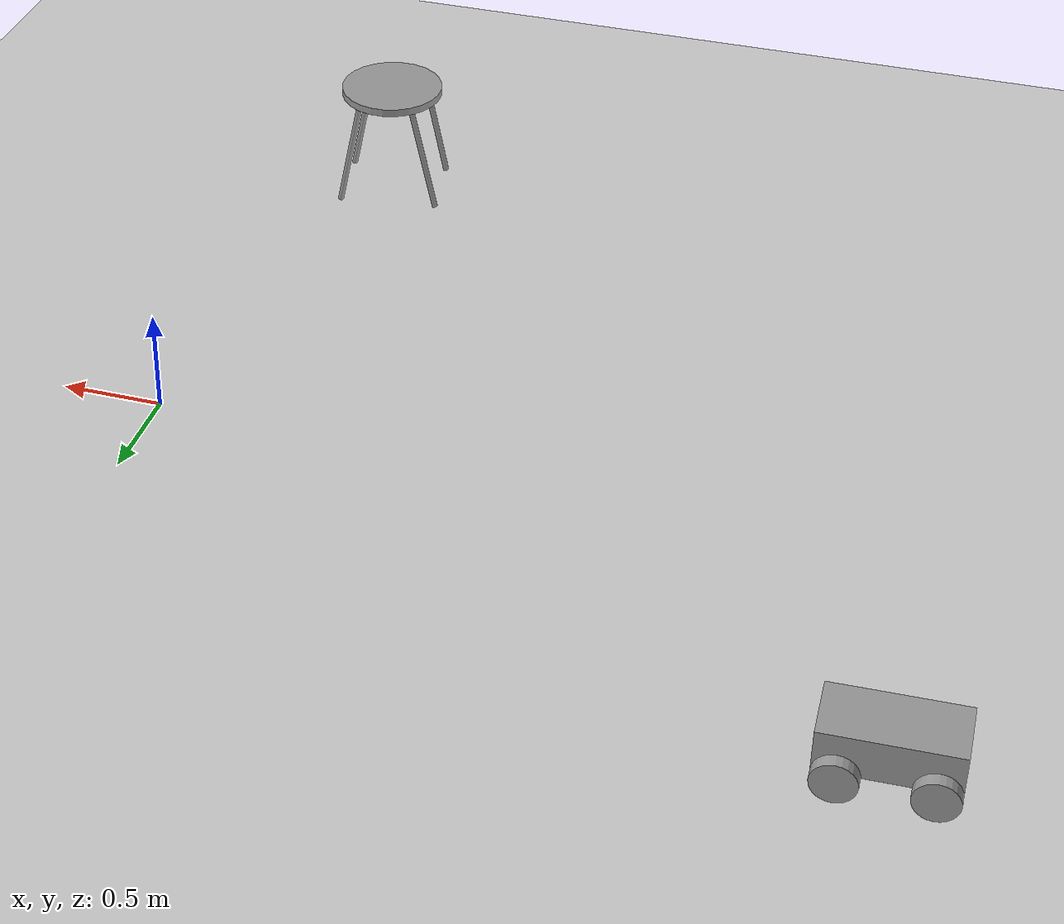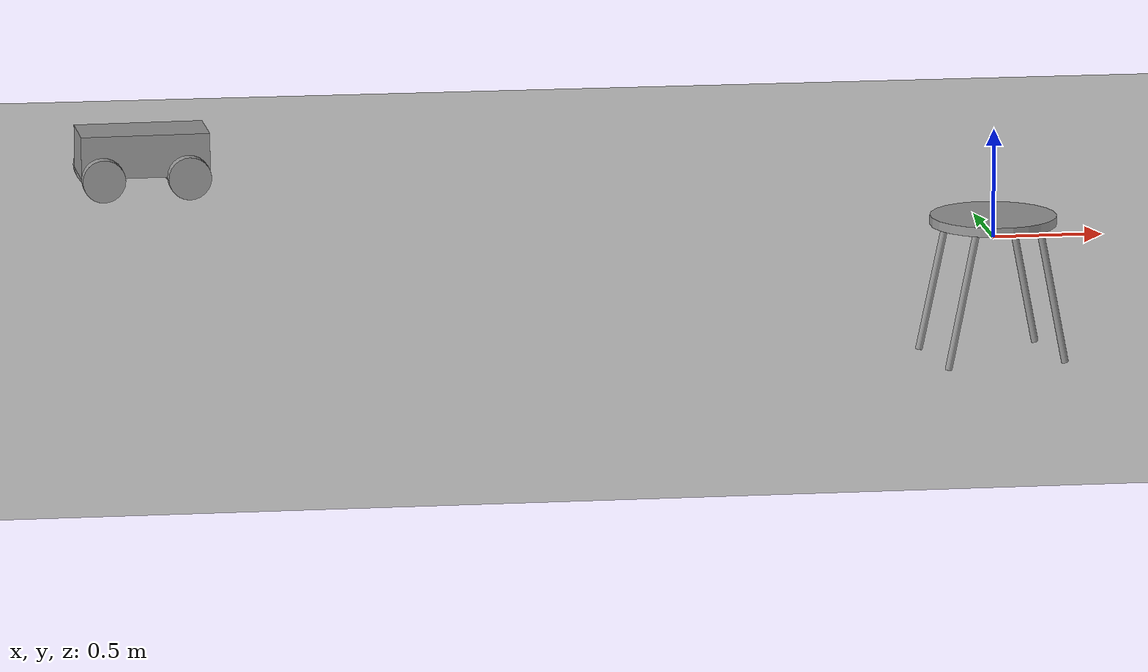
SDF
<sdf version="1.6">
 <world name="default">
  <model name="ground_plane">
   <static>1</static>
   <link name="link">
    <collision name="collision">
     <geometry><plane><normal>0 0 1</normal><size>100 100</size></plane></geometry>
     <surface><friction><ode><mu>100</mu><mu2>50</mu2></ode></friction></surface>
    </collision>
    <visual name="visual">
     <cast_shadows>0</cast_shadows>
     <geometry><plane><normal>0 0 1</normal><size>100 100</size></plane></geometry>
     <material>
      <script><uri>file://media/materials/scripts/gazebo.material</uri><name>Gazebo/Grey</name></script>
     </material>
    </visual>
   </link>
  </model>
  <model name="4wheelrobot">
   <link name="link_0">
    <pose>0 1e-06 0.2 0 -0 0</pose>
    <inertial>
     <mass>1</mass>
     <inertia>
      <ixx>0.166667</ixx>
      <ixy>0</ixy>
      <ixz>0</ixz>
      <iyy>0.166667</iyy>
      <iyz>0</iyz>
      <izz>0.166667</izz>
     </inertia>
    </inertial>
    <visual name="visual">
     <geometry><box><size>0.6 0.3 0.2</size></box></geometry>
     <material>
      <lighting>1</lighting>
      <script><uri>file://media/materials/scripts/gazebo.material</uri><name>Gazebo/Grey</name></script>
      <shader type="pixel"><normal_map>__default__</normal_map></shader>
      <ambient>0.3 0.3 0.3 1</ambient>
      <diffuse>0.7 0.7 0.7 1</diffuse>
      <specular>0.01 0.01 0.01 1</specular>
      <emissive>0 0 0 1</emissive>
     </material>
    </visual>
    <collision name="collision">
     <geometry><box><size>0.6 0.3 0.2</size></box></geometry>
     <surface>
      <friction>
       <ode><mu>1</mu><mu2>1</mu2><fdir1>0 0 0</fdir1><slip1>0</slip1><slip2>0</slip2></ode>
       <torsional>
        <coefficient>1</coefficient>
        <patch_radius>0</patch_radius>
        <surface_radius>0</surface_radius>
        <use_patch_radius>1</use_patch_radius>
        <ode><slip>0</slip></ode>
       </torsional>
      </friction>
      <bounce><restitution_coefficient>0</restitution_coefficient><threshold>1e+06</threshold></bounce>
      <contact>
       <collide_without_contact>0</collide_without_contact>
       <collide_without_contact_bitmask>1</collide_without_contact_bitmask>
       <collide_bitmask>1</collide_bitmask>
       <ode>
        <soft_cfm>0</soft_cfm>
        <soft_erp>0.2</soft_erp>
        <kp>1e+13</kp>
        <kd>1</kd>
        <max_vel>0.01</max_vel>
        <min_depth>0</min_depth>
       </ode>
       <bullet>
        <split_impulse>1</split_impulse>
        <split_impulse_penetration_threshold>-0.01</split_impulse_penetration_threshold>
        <soft_cfm>0</soft_cfm>
        <soft_erp>0.2</soft_erp>
        <kp>1e+13</kp>
        <kd>1</kd>
       </bullet>
      </contact>
     </surface>
    </collision>
   </link>
   <link name="link_1">
    <pose>0.2 -0.180012 0.1 1.5707 -0 0</pose>
    <inertial>
     <mass>1</mass>
     <inertia><ixx>0.145833</ixx><ixy>0</ixy><ixz>0</ixz><iyy>0.145833</iyy><iyz>0</iyz><izz>0.125</izz></inertia>
    </inertial>
    <visual name="visual">
     <geometry><cylinder><radius>0.1</radius><length>0.06</length></cylinder></geometry>
     <material>
      <lighting>1</lighting>
      <script><uri>file://media/materials/scripts/gazebo.material</uri><name>Gazebo/Grey</name></script>
      <shader type="pixel"><normal_map>__default__</normal_map></shader>
      <ambient>0.3 0.3 0.3 1</ambient>
      <diffuse>0.7 0.7 0.7 1</diffuse>
      <specular>0.01 0.01 0.01 1</specular>
      <emissive>0 0 0 1</emissive>
     </material>
    </visual>
    <collision name="collision">
     <geometry><cylinder><radius>0.1</radius><length>0.06</length></cylinder></geometry>
     <surface>
      <friction>
       <ode><mu>1</mu><mu2>1</mu2><fdir1>0 0 0</fdir1><slip1>0</slip1><slip2>0</slip2></ode>
       <torsional>
        <coefficient>1</coefficient>
        <patch_radius>0</patch_radius>
        <surface_radius>0</surface_radius>
        <use_patch_radius>1</use_patch_radius>
        <ode><slip>0</slip></ode>
       </torsional>
      </friction>
      <bounce><restitution_coefficient>0</restitution_coefficient><threshold>1e+06</threshold></bounce>
      <contact>
       <collide_without_contact>0</collide_without_contact>
       <collide_without_contact_bitmask>1</collide_without_contact_bitmask>
       <collide_bitmask>1</collide_bitmask>
       <ode>
        <soft_cfm>0</soft_cfm>
        <soft_erp>0.2</soft_erp>
        <kp>1e+13</kp>
        <kd>1</kd>
        <max_vel>0.01</max_vel>
        <min_depth>0</min_depth>
       </ode>
       <bullet>
        <split_impulse>1</split_impulse>
        <split_impulse_penetration_threshold>-0.01</split_impulse_penetration_threshold>
        <soft_cfm>0</soft_cfm>
        <soft_erp>0.2</soft_erp>
        <kp>1e+13</kp>
        <kd>1</kd>
       </bullet>
      </contact>
     </surface>
    </collision>
   </link>
   <link name="link_1_clone">
    <pose>-0.2 -0.180009 0.1 1.5707 -0 0</pose>
    <inertial>
     <mass>1</mass>
     <inertia><ixx>0.145833</ixx><ixy>0</ixy><ixz>0</ixz><iyy>0.145833</iyy><iyz>0</iyz><izz>0.125</izz></inertia>
    </inertial>
    <visual name="visual">
     <geometry><cylinder><radius>0.1</radius><length>0.06</length></cylinder></geometry>
     <material>
      <lighting>1</lighting>
      <script><uri>file://media/materials/scripts/gazebo.material</uri><name>Gazebo/Grey</name></script>
      <shader type="pixel"><normal_map>__default__</normal_map></shader>
      <ambient>0.3 0.3 0.3 1</ambient>
      <diffuse>0.7 0.7 0.7 1</diffuse>
      <specular>0.01 0.01 0.01 1</specular>
      <emissive>0 0 0 1</emissive>
     </material>
    </visual>
    <collision name="collision">
     <geometry><cylinder><radius>0.1</radius><length>0.06</length></cylinder></geometry>
     <surface>
      <friction>
       <ode><mu>1</mu><mu2>1</mu2><fdir1>0 0 0</fdir1><slip1>0</slip1><slip2>0</slip2></ode>
       <torsional>
        <coefficient>1</coefficient>
        <patch_radius>0</patch_radius>
        <surface_radius>0</surface_radius>
        <use_patch_radius>1</use_patch_radius>
        <ode><slip>0</slip></ode>
       </torsional>
      </friction>
      <bounce><restitution_coefficient>0</restitution_coefficient><threshold>1e+06</threshold></bounce>
      <contact>
       <collide_without_contact>0</collide_without_contact>
       <collide_without_contact_bitmask>1</collide_without_contact_bitmask>
       <collide_bitmask>1</collide_bitmask>
       <ode>
        <soft_cfm>0</soft_cfm>
        <soft_erp>0.2</soft_erp>
        <kp>1e+13</kp>
        <kd>1</kd>
        <max_vel>0.01</max_vel>
        <min_depth>0</min_depth>
       </ode>
       <bullet>
        <split_impulse>1</split_impulse>
        <split_impulse_penetration_threshold>-0.01</split_impulse_penetration_threshold>
        <soft_cfm>0</soft_cfm>
        <soft_erp>0.2</soft_erp>
        <kp>1e+13</kp>
        <kd>1</kd>
       </bullet>
      </contact>
     </surface>
    </collision>
   </link>
   <link name="link_1_clone_0">
    <pose>-0.2 0.18001 0.1 1.5707 -0 0</pose>
    <inertial>
     <mass>1</mass>
     <inertia><ixx>0.145833</ixx><ixy>0</ixy><ixz>0</ixz><iyy>0.145833</iyy><iyz>0</iyz><izz>0.125</izz></inertia>
    </inertial>
    <visual name="visual">
     <geometry><cylinder><radius>0.1</radius><length>0.06</length></cylinder></geometry>
     <material>
      <lighting>1</lighting>
      <script><uri>file://media/materials/scripts/gazebo.material</uri><name>Gazebo/Grey</name></script>
      <shader type="pixel"><normal_map>__default__</normal_map></shader>
      <ambient>0.3 0.3 0.3 1</ambient>
      <diffuse>0.7 0.7 0.7 1</diffuse>
      <specular>0.01 0.01 0.01 1</specular>
      <emissive>0 0 0 1</emissive>
     </material>
    </visual>
    <collision name="collision">
     <geometry><cylinder><radius>0.1</radius><length>0.06</length></cylinder></geometry>
     <surface>
      <friction>
       <ode><mu>1</mu><mu2>1</mu2><fdir1>0 0 0</fdir1><slip1>0</slip1><slip2>0</slip2></ode>
       <torsional>
        <coefficient>1</coefficient>
        <patch_radius>0</patch_radius>
        <surface_radius>0</surface_radius>
        <use_patch_radius>1</use_patch_radius>
        <ode><slip>0</slip></ode>
       </torsional>
      </friction>
      <bounce><restitution_coefficient>0</restitution_coefficient><threshold>1e+06</threshold></bounce>
      <contact>
       <collide_without_contact>0</collide_without_contact>
       <collide_without_contact_bitmask>1</collide_without_contact_bitmask>
       <collide_bitmask>1</collide_bitmask>
       <ode>
        <soft_cfm>0</soft_cfm>
        <soft_erp>0.2</soft_erp>
        <kp>1e+13</kp>
        <kd>1</kd>
        <max_vel>0.01</max_vel>
        <min_depth>0</min_depth>
       </ode>
       <bullet>
        <split_impulse>1</split_impulse>
        <split_impulse_penetration_threshold>-0.01</split_impulse_penetration_threshold>
        <soft_cfm>0</soft_cfm>
        <soft_erp>0.2</soft_erp>
        <kp>1e+13</kp>
        <kd>1</kd>
       </bullet>
      </contact>
     </surface>
    </collision>
   </link>
   <link name="link_1_clone_1">
    <pose>0.2 0.18001 0.1 1.5707 -0 0</pose>
    <inertial>
     <mass>1</mass>
     <inertia><ixx>0.145833</ixx><ixy>0</ixy><ixz>0</ixz><iyy>0.145833</iyy><iyz>0</iyz><izz>0.125</izz></inertia>
    </inertial>
    <visual name="visual">
     <geometry><cylinder><radius>0.1</radius><length>0.06</length></cylinder></geometry>
     <material>
      <lighting>1</lighting>
      <script><uri>file://media/materials/scripts/gazebo.material</uri><name>Gazebo/Grey</name></script>
      <shader type="pixel"><normal_map>__default__</normal_map></shader>
      <ambient>0.3 0.3 0.3 1</ambient>
      <diffuse>0.7 0.7 0.7 1</diffuse>
      <specular>0.01 0.01 0.01 1</specular>
      <emissive>0 0 0 1</emissive>
     </material>
    </visual>
    <collision name="collision">
     <geometry><cylinder><radius>0.1</radius><length>0.06</length></cylinder></geometry>
     <surface>
      <friction>
       <ode><mu>1</mu><mu2>1</mu2><fdir1>0 0 0</fdir1><slip1>0</slip1><slip2>0</slip2></ode>
       <torsional>
        <coefficient>1</coefficient>
        <patch_radius>0</patch_radius>
        <surface_radius>0</surface_radius>
        <use_patch_radius>1</use_patch_radius>
        <ode><slip>0</slip></ode>
       </torsional>
      </friction>
      <bounce><restitution_coefficient>0</restitution_coefficient><threshold>1e+06</threshold></bounce>
      <contact>
       <collide_without_contact>0</collide_without_contact>
       <collide_without_contact_bitmask>1</collide_without_contact_bitmask>
       <collide_bitmask>1</collide_bitmask>
       <ode>
        <soft_cfm>0</soft_cfm>
        <soft_erp>0.2</soft_erp>
        <kp>1e+13</kp>
        <kd>1</kd>
        <max_vel>0.01</max_vel>
        <min_depth>0</min_depth>
       </ode>
       <bullet>
        <split_impulse>1</split_impulse>
        <split_impulse_penetration_threshold>-0.01</split_impulse_penetration_threshold>
        <soft_cfm>0</soft_cfm>
        <soft_erp>0.2</soft_erp>
        <kp>1e+13</kp>
        <kd>1</kd>
       </bullet>
      </contact>
     </surface>
    </collision>
   </link>
   <joint name="link_0_JOINT_0" type="revolute">
    <parent>link_0</parent>
    <child>link_1</child>
    <axis>
     <xyz>0 1 0</xyz>
     <use_parent_model_frame>0</use_parent_model_frame>
     <limit>
      <lower>-1.79769e+308</lower>
      <upper>1.79769e+308</upper>
      <effort>-1</effort>
      <velocity>-1</velocity>
     </limit>
     <dynamics>
      <spring_reference>0</spring_reference>
      <spring_stiffness>0</spring_stiffness>
      <damping>0</damping>
      <friction>0</friction>
     </dynamics>
    </axis>
    <physics>
     <ode><limit><cfm>0</cfm><erp>0.2</erp></limit><suspension><cfm>0</cfm><erp>0.2</erp></suspension></ode>
    </physics>
   </joint>
   <joint name="link_0_JOINT_1" type="revolute">
    <parent>link_0</parent>
    <child>link_1_clone_1</child>
    <axis>
     <xyz>0 1 0</xyz>
     <use_parent_model_frame>0</use_parent_model_frame>
     <limit>
      <lower>-1.79769e+308</lower>
      <upper>1.79769e+308</upper>
      <effort>-1</effort>
      <velocity>-1</velocity>
     </limit>
     <dynamics>
      <spring_reference>0</spring_reference>
      <spring_stiffness>0</spring_stiffness>
      <damping>0</damping>
     </dynamics>
    </axis>
    <physics>
     <ode><limit><cfm>0</cfm><erp>0.2</erp></limit><suspension><cfm>0</cfm><erp>0.2</erp></suspension></ode>
    </physics>
   </joint>
   <joint name="link_0_JOINT_2" type="revolute">
    <parent>link_0</parent>
    <child>link_1_clone</child>
    <axis>
     <xyz>0 1 0</xyz>
     <use_parent_model_frame>0</use_parent_model_frame>
     <limit>
      <lower>-1.79769e+308</lower>
      <upper>1.79769e+308</upper>
      <effort>-1</effort>
      <velocity>-1</velocity>
     </limit>
     <dynamics>
      <spring_reference>0</spring_reference>
      <spring_stiffness>0</spring_stiffness>
      <damping>0</damping>
     </dynamics>
    </axis>
    <physics>
     <ode><limit><cfm>0</cfm><erp>0.2</erp></limit><suspension><cfm>0</cfm><erp>0.2</erp></suspension></ode>
    </physics>
   </joint>
   <joint name="link_0_JOINT_3" type="revolute">
    <parent>link_0</parent>
    <child>link_1_clone_0</child>
    <axis>
     <xyz>0 1 0</xyz>
     <use_parent_model_frame>0</use_parent_model_frame>
     <limit>
      <lower>-1.79769e+308</lower>
      <upper>1.79769e+308</upper>
      <effort>-1</effort>
      <velocity>-1</velocity>
     </limit>
     <dynamics>
      <spring_reference>0</spring_reference>
      <spring_stiffness>0</spring_stiffness>
      <damping>0</damping>
     </dynamics>
    </axis>
    <physics>
     <ode><limit><cfm>0</cfm><erp>0.2</erp></limit><suspension><cfm>0</cfm><erp>0.2</erp></suspension></ode>
    </physics>
   </joint>
   <static>0</static>
   <pose>-3.75164 1.46547 1e-06 -4e-06 7e-06 0.038939</pose>
  </model>
  <model name="chair01_1">
   <link name="link_1">
    <pose>0 0 0.6 0 -0 0</pose>
    <inertial>
     <mass>1</mass>
     <inertia><ixx>0.145833</ixx><ixy>0</ixy><ixz>0</ixz><iyy>0.145833</iyy><iyz>0</iyz><izz>0.125</izz></inertia>
    </inertial>
    <visual name="visual">
     <geometry><cylinder><radius>0.27</radius><length>0.04</length></cylinder></geometry>
     <material>
      <lighting>1</lighting>
      <script><uri>file://media/materials/scripts/gazebo.material</uri><name>Gazebo/Grey</name></script>
      <shader type="pixel"><normal_map>__default__</normal_map></shader>
      <ambient>0.3 0.3 0.3 1</ambient>
      <diffuse>0.7 0.7 0.7 1</diffuse>
      <specular>0.01 0.01 0.01 1</specular>
      <emissive>0 0 0 1</emissive>
     </material>
    </visual>
    <collision name="collision">
     <geometry><cylinder><radius>0.27</radius><length>0.04</length></cylinder></geometry>
     <surface>
      <friction>
       <ode><mu>1</mu><mu2>1</mu2><fdir1>0 0 0</fdir1><slip1>0</slip1><slip2>0</slip2></ode>
       <torsional>
        <coefficient>1</coefficient>
        <patch_radius>0</patch_radius>
        <surface_radius>0</surface_radius>
        <use_patch_radius>1</use_patch_radius>
        <ode><slip>0</slip></ode>
       </torsional>
      </friction>
      <bounce><restitution_coefficient>0</restitution_coefficient><threshold>1e+06</threshold></bounce>
      <contact>
       <collide_without_contact>0</collide_without_contact>
       <collide_without_contact_bitmask>1</collide_without_contact_bitmask>
       <collide_bitmask>1</collide_bitmask>
       <ode>
        <soft_cfm>0</soft_cfm>
        <soft_erp>0.2</soft_erp>
        <kp>1e+13</kp>
        <kd>1</kd>
        <max_vel>0.01</max_vel>
        <min_depth>0</min_depth>
       </ode>
       <bullet>
        <split_impulse>1</split_impulse>
        <split_impulse_penetration_threshold>-0.01</split_impulse_penetration_threshold>
        <soft_cfm>0</soft_cfm>
        <soft_erp>0.2</soft_erp>
        <kp>1e+13</kp>
        <kd>1</kd>
       </bullet>
      </contact>
     </surface>
    </collision>
   </link>
   <link name="link_2">
    <pose>0.2 0.2 0.3 0 -0.2 0</pose>
    <inertial>
     <mass>1</mass>
     <inertia><ixx>0.145833</ixx><ixy>0</ixy><ixz>0</ixz><iyy>0.145833</iyy><iyz>0</iyz><izz>0.125</izz></inertia>
    </inertial>
    <visual name="visual">
     <geometry><cylinder><radius>0.015</radius><length>0.6</length></cylinder></geometry>
     <material>
      <lighting>1</lighting>
      <script><uri>file://media/materials/scripts/gazebo.material</uri><name>Gazebo/Grey</name></script>
      <shader type="pixel"><normal_map>__default__</normal_map></shader>
      <ambient>0.3 0.3 0.3 1</ambient>
      <diffuse>0.7 0.7 0.7 1</diffuse>
      <specular>0.01 0.01 0.01 1</specular>
      <emissive>0 0 0 1</emissive>
     </material>
    </visual>
    <collision name="collision">
     <geometry><cylinder><radius>0.015</radius><length>0.6</length></cylinder></geometry>
     <surface>
      <friction>
       <ode><mu>1</mu><mu2>1</mu2><fdir1>0 0 0</fdir1><slip1>0</slip1><slip2>0</slip2></ode>
       <torsional>
        <coefficient>1</coefficient>
        <patch_radius>0</patch_radius>
        <surface_radius>0</surface_radius>
        <use_patch_radius>1</use_patch_radius>
        <ode><slip>0</slip></ode>
       </torsional>
      </friction>
      <bounce><restitution_coefficient>0</restitution_coefficient><threshold>1e+06</threshold></bounce>
      <contact>
       <collide_without_contact>0</collide_without_contact>
       <collide_without_contact_bitmask>1</collide_without_contact_bitmask>
       <collide_bitmask>1</collide_bitmask>
       <ode>
        <soft_cfm>0</soft_cfm>
        <soft_erp>0.2</soft_erp>
        <kp>1e+13</kp>
        <kd>1</kd>
        <max_vel>0.01</max_vel>
        <min_depth>0</min_depth>
       </ode>
       <bullet>
        <split_impulse>1</split_impulse>
        <split_impulse_penetration_threshold>-0.01</split_impulse_penetration_threshold>
        <soft_cfm>0</soft_cfm>
        <soft_erp>0.2</soft_erp>
        <kp>1e+13</kp>
        <kd>1</kd>
       </bullet>
      </contact>
     </surface>
    </collision>
   </link>
   <link name="link_2_clone">
    <pose>0.2 -0.2 0.3 0 -0.2 0</pose>
    <inertial>
     <mass>1</mass>
     <inertia><ixx>0.145833</ixx><ixy>0</ixy><ixz>0</ixz><iyy>0.145833</iyy><iyz>0</iyz><izz>0.125</izz></inertia>
    </inertial>
    <visual name="visual">
     <geometry><cylinder><radius>0.015</radius><length>0.6</length></cylinder></geometry>
     <material>
      <lighting>1</lighting>
      <script><uri>file://media/materials/scripts/gazebo.material</uri><name>Gazebo/Grey</name></script>
      <shader type="pixel"><normal_map>__default__</normal_map></shader>
      <ambient>0.3 0.3 0.3 1</ambient>
      <diffuse>0.7 0.7 0.7 1</diffuse>
      <specular>0.01 0.01 0.01 1</specular>
      <emissive>0 0 0 1</emissive>
     </material>
    </visual>
    <collision name="collision">
     <geometry><cylinder><radius>0.015</radius><length>0.6</length></cylinder></geometry>
     <surface>
      <friction>
       <ode><mu>1</mu><mu2>1</mu2><fdir1>0 0 0</fdir1><slip1>0</slip1><slip2>0</slip2></ode>
       <torsional>
        <coefficient>1</coefficient>
        <patch_radius>0</patch_radius>
        <surface_radius>0</surface_radius>
        <use_patch_radius>1</use_patch_radius>
        <ode><slip>0</slip></ode>
       </torsional>
      </friction>
      <bounce><restitution_coefficient>0</restitution_coefficient><threshold>1e+06</threshold></bounce>
      <contact>
       <collide_without_contact>0</collide_without_contact>
       <collide_without_contact_bitmask>1</collide_without_contact_bitmask>
       <collide_bitmask>1</collide_bitmask>
       <ode>
        <soft_cfm>0</soft_cfm>
        <soft_erp>0.2</soft_erp>
        <kp>1e+13</kp>
        <kd>1</kd>
        <max_vel>0.01</max_vel>
        <min_depth>0</min_depth>
       </ode>
       <bullet>
        <split_impulse>1</split_impulse>
        <split_impulse_penetration_threshold>-0.01</split_impulse_penetration_threshold>
        <soft_cfm>0</soft_cfm>
        <soft_erp>0.2</soft_erp>
        <kp>1e+13</kp>
        <kd>1</kd>
       </bullet>
      </contact>
     </surface>
    </collision>
   </link>
   <link name="link_2_clone_0">
    <pose>-0.2 -0.2 0.3 0 0.2 0</pose>
    <inertial>
     <mass>1</mass>
     <inertia><ixx>0.145833</ixx><ixy>0</ixy><ixz>0</ixz><iyy>0.145833</iyy><iyz>0</iyz><izz>0.125</izz></inertia>
    </inertial>
    <visual name="visual">
     <geometry><cylinder><radius>0.015</radius><length>0.6</length></cylinder></geometry>
     <material>
      <lighting>1</lighting>
      <script><uri>file://media/materials/scripts/gazebo.material</uri><name>Gazebo/Grey</name></script>
      <shader type="pixel"><normal_map>__default__</normal_map></shader>
      <ambient>0.3 0.3 0.3 1</ambient>
      <diffuse>0.7 0.7 0.7 1</diffuse>
      <specular>0.01 0.01 0.01 1</specular>
      <emissive>0 0 0 1</emissive>
     </material>
    </visual>
    <collision name="collision">
     <geometry><cylinder><radius>0.015</radius><length>0.6</length></cylinder></geometry>
     <surface>
      <friction>
       <ode><mu>1</mu><mu2>1</mu2><fdir1>0 0 0</fdir1><slip1>0</slip1><slip2>0</slip2></ode>
       <torsional>
        <coefficient>1</coefficient>
        <patch_radius>0</patch_radius>
        <surface_radius>0</surface_radius>
        <use_patch_radius>1</use_patch_radius>
        <ode><slip>0</slip></ode>
       </torsional>
      </friction>
      <bounce><restitution_coefficient>0</restitution_coefficient><threshold>1e+06</threshold></bounce>
      <contact>
       <collide_without_contact>0</collide_without_contact>
       <collide_without_contact_bitmask>1</collide_without_contact_bitmask>
       <collide_bitmask>1</collide_bitmask>
       <ode>
        <soft_cfm>0</soft_cfm>
        <soft_erp>0.2</soft_erp>
        <kp>1e+13</kp>
        <kd>1</kd>
        <max_vel>0.01</max_vel>
        <min_depth>0</min_depth>
       </ode>
       <bullet>
        <split_impulse>1</split_impulse>
        <split_impulse_penetration_threshold>-0.01</split_impulse_penetration_threshold>
        <soft_cfm>0</soft_cfm>
        <soft_erp>0.2</soft_erp>
        <kp>1e+13</kp>
        <kd>1</kd>
       </bullet>
      </contact>
     </surface>
    </collision>
   </link>
   <link name="link_2_clone_1">
    <pose>-0.2 0.2 0.3 0 0.21 0</pose>
    <inertial>
     <mass>1</mass>
     <inertia><ixx>0.145833</ixx><ixy>0</ixy><ixz>0</ixz><iyy>0.145833</iyy><iyz>0</iyz><izz>0.125</izz></inertia>
    </inertial>
    <visual name="visual">
     <geometry><cylinder><radius>0.015</radius><length>0.6</length></cylinder></geometry>
     <material>
      <lighting>1</lighting>
      <script><uri>file://media/materials/scripts/gazebo.material</uri><name>Gazebo/Grey</name></script>
      <shader type="pixel"><normal_map>__default__</normal_map></shader>
      <ambient>0.3 0.3 0.3 1</ambient>
      <diffuse>0.7 0.7 0.7 1</diffuse>
      <specular>0.01 0.01 0.01 1</specular>
      <emissive>0 0 0 1</emissive>
     </material>
    </visual>
    <collision name="collision">
     <geometry><cylinder><radius>0.015</radius><length>0.6</length></cylinder></geometry>
     <surface>
      <friction>
       <ode><mu>1</mu><mu2>1</mu2><fdir1>0 0 0</fdir1><slip1>0</slip1><slip2>0</slip2></ode>
       <torsional>
        <coefficient>1</coefficient>
        <patch_radius>0</patch_radius>
        <surface_radius>0</surface_radius>
        <use_patch_radius>1</use_patch_radius>
        <ode><slip>0</slip></ode>
       </torsional>
      </friction>
      <bounce><restitution_coefficient>0</restitution_coefficient><threshold>1e+06</threshold></bounce>
      <contact>
       <collide_without_contact>0</collide_without_contact>
       <collide_without_contact_bitmask>1</collide_without_contact_bitmask>
       <collide_bitmask>1</collide_bitmask>
       <ode>
        <soft_cfm>0</soft_cfm>
        <soft_erp>0.2</soft_erp>
        <kp>1e+13</kp>
        <kd>1</kd>
        <max_vel>0.01</max_vel>
        <min_depth>0</min_depth>
       </ode>
       <bullet>
        <split_impulse>1</split_impulse>
        <split_impulse_penetration_threshold>-0.01</split_impulse_penetration_threshold>
        <soft_cfm>0</soft_cfm>
        <soft_erp>0.2</soft_erp>
        <kp>1e+13</kp>
        <kd>1</kd>
       </bullet>
      </contact>
     </surface>
    </collision>
   </link>
   <joint name="link_1_JOINT_1" type="revolute">
    <parent>link_1</parent>
    <child>link_2</child>
    <axis>
     <xyz>0 0 1</xyz>
     <use_parent_model_frame>0</use_parent_model_frame>
     <limit>
      <lower>-1.79769e+308</lower>
      <upper>1.79769e+308</upper>
      <effort>-1</effort>
      <velocity>-1</velocity>
     </limit>
     <dynamics>
      <spring_reference>0</spring_reference>
      <spring_stiffness>0</spring_stiffness>
      <damping>0</damping>
     </dynamics>
    </axis>
    <physics>
     <ode><limit><cfm>0</cfm><erp>0.2</erp></limit><suspension><cfm>0</cfm><erp>0.2</erp></suspension></ode>
    </physics>
   </joint>
   <joint name="link_1_JOINT_2" type="revolute">
    <parent>link_1</parent>
    <child>link_2_clone</child>
    <axis>
     <xyz>0 0 1</xyz>
     <use_parent_model_frame>0</use_parent_model_frame>
     <limit>
      <lower>-1.79769e+308</lower>
      <upper>1.79769e+308</upper>
      <effort>-1</effort>
      <velocity>-1</velocity>
     </limit>
     <dynamics>
      <spring_reference>0</spring_reference>
      <spring_stiffness>0</spring_stiffness>
      <damping>0</damping>
     </dynamics>
    </axis>
    <physics>
     <ode><limit><cfm>0</cfm><erp>0.2</erp></limit><suspension><cfm>0</cfm><erp>0.2</erp></suspension></ode>
    </physics>
   </joint>
   <joint name="link_1_JOINT_3" type="revolute">
    <parent>link_1</parent>
    <child>link_2_clone_0</child>
    <axis>
     <xyz>0 0 1</xyz>
     <use_parent_model_frame>0</use_parent_model_frame>
     <limit>
      <lower>-1.79769e+308</lower>
      <upper>1.79769e+308</upper>
      <effort>-1</effort>
      <velocity>-1</velocity>
     </limit>
     <dynamics>
      <spring_reference>0</spring_reference>
      <spring_stiffness>0</spring_stiffness>
      <damping>0</damping>
     </dynamics>
    </axis>
    <physics>
     <ode><limit><cfm>0</cfm><erp>0.2</erp></limit><suspension><cfm>0</cfm><erp>0.2</erp></suspension></ode>
    </physics>
   </joint>
   <joint name="link_1_JOINT_4" type="revolute">
    <parent>link_1</parent>
    <child>link_2_clone_1</child>
    <axis>
     <xyz>0 0 1</xyz>
     <use_parent_model_frame>0</use_parent_model_frame>
     <limit>
      <lower>-1.79769e+308</lower>
      <upper>1.79769e+308</upper>
      <effort>-1</effort>
      <velocity>-1</velocity>
     </limit>
     <dynamics>
      <spring_reference>0</spring_reference>
      <spring_stiffness>0</spring_stiffness>
      <damping>0</damping>
     </dynamics>
    </axis>
    <physics>
     <ode><limit><cfm>0</cfm><erp>0.2</erp></limit><suspension><cfm>0</cfm><erp>0.2</erp></suspension></ode>
    </physics>
   </joint>
   <static>0</static>
   <pose>-0.422281 -2.29942 -0.003002 -0.001042 -0.000841 0.141819</pose>
  </model>
 </world>
</sdf>
